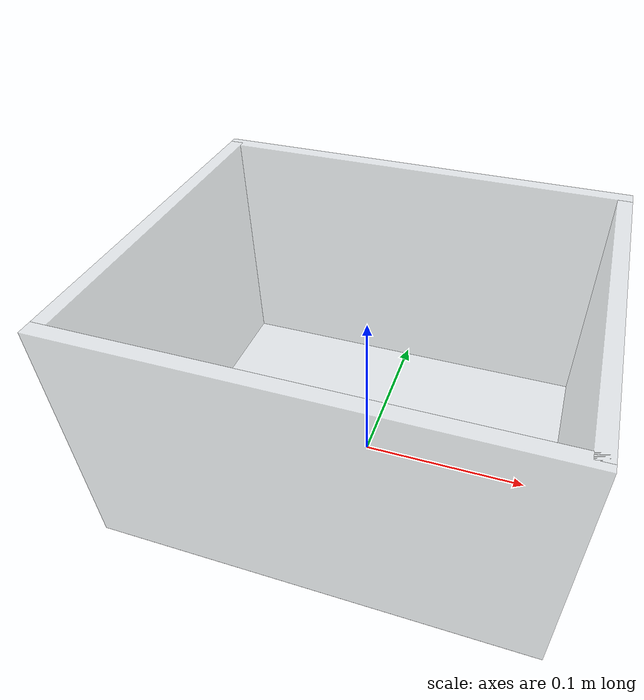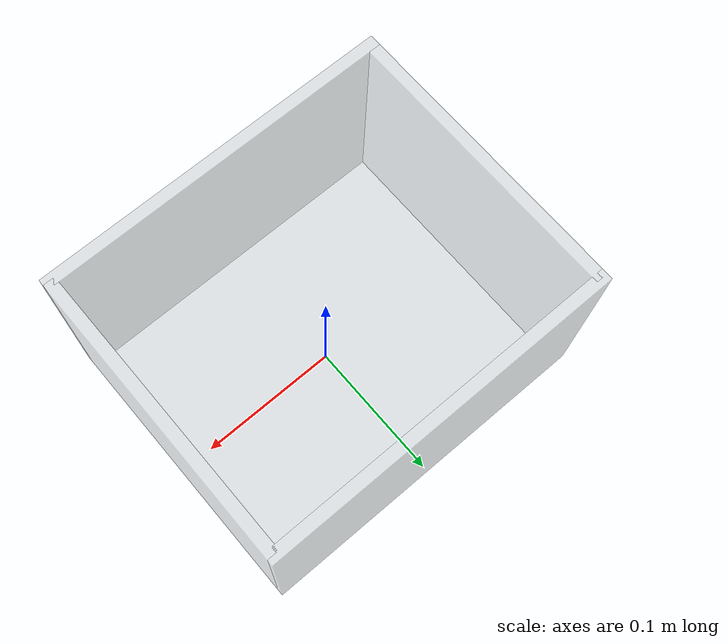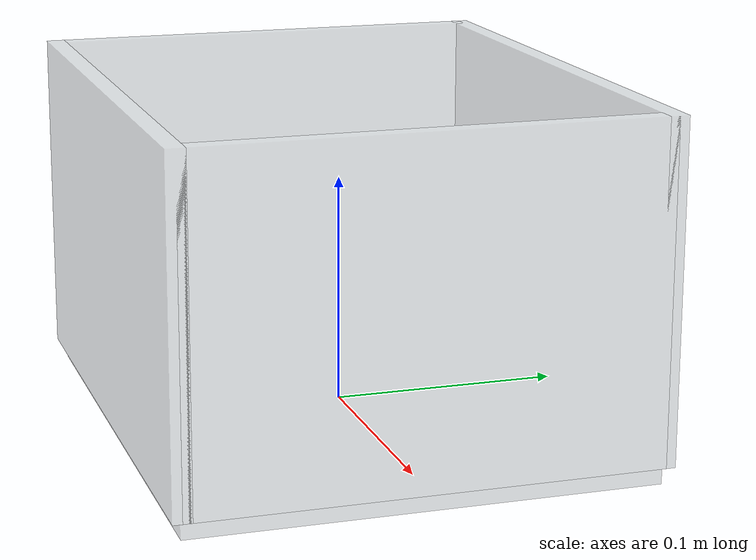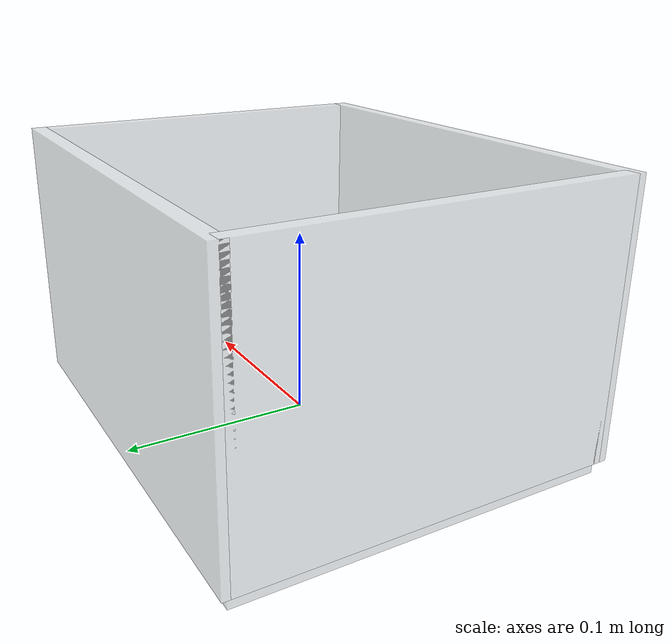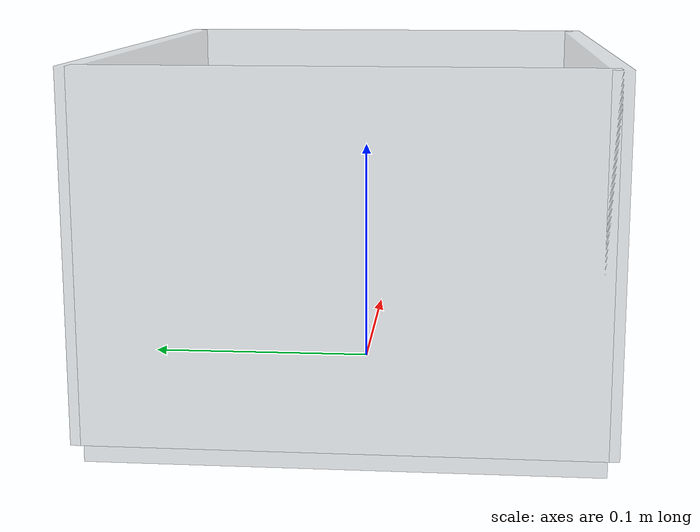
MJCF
<mujoco model="plastic_box">
  <compiler angle="radian" autolimits="true"/>

  <asset>
    <material name="plastic_mat"
              rgba="0.75 0.78 0.80 0.45"
              specular="0.6"
              shininess="0.4"
              reflectance="0.15"/>
  </asset>

  <default>
    <default class="box_wall">
      <geom material="plastic_mat" condim="6"
            friction="0.6 0.005 0.0001"
            solimp="0.99 0.99 0.001" solref="0.01 1"/>
    </default>
  </default>

  <worldbody>
    <body name="plastic_box">
      <inertial mass="0.35" pos="0 0 0.0725" diaginertia="8e-4 1.2e-3 1.4e-3"/>

      <!-- Inner cavity: 240 x 200 x 145mm. Wall thickness: 4mm. -->

      <!-- Floor -->
      <geom name="floor" class="box_wall" type="box"
            size="0.120 0.100 0.004" pos="0 0 -0.004"/>

      <!-- Front wall -->
      <geom name="wall_front" class="box_wall" type="box"
            size="0.004 0.100 0.0725" pos="0.120 0 0.0725"/>

      <!-- Back wall -->
      <geom name="wall_back" class="box_wall" type="box"
            size="0.004 0.100 0.0725" pos="-0.120 0 0.0725"/>

      <!-- Left wall -->
      <geom name="wall_left" class="box_wall" type="box"
            size="0.124 0.004 0.0725" pos="0 0.100 0.0725"/>

      <!-- Right wall -->
      <geom name="wall_right" class="box_wall" type="box"
            size="0.124 0.004 0.0725" pos="0 -0.100 0.0725"/>

    </body>
  </worldbody>
</mujoco>
